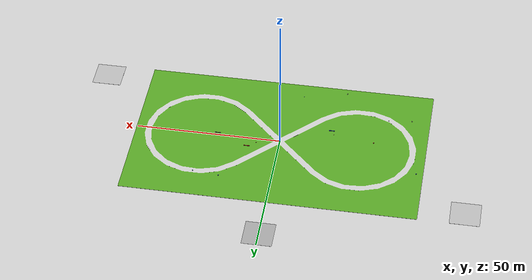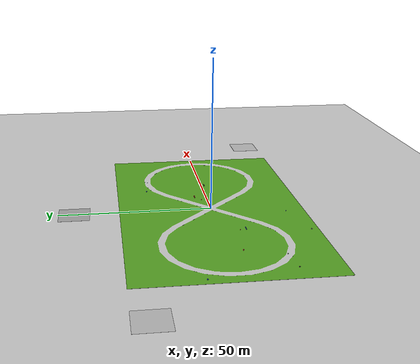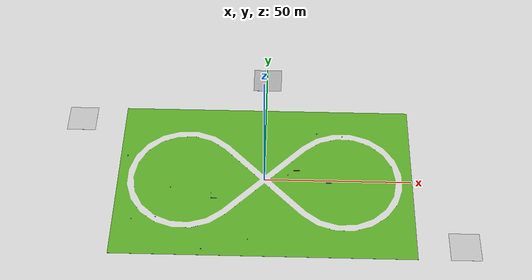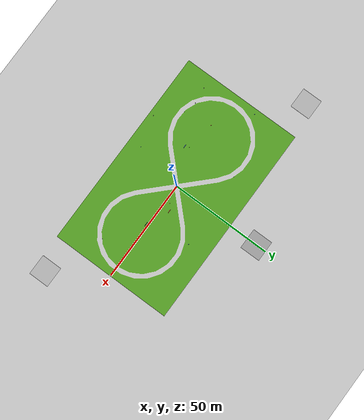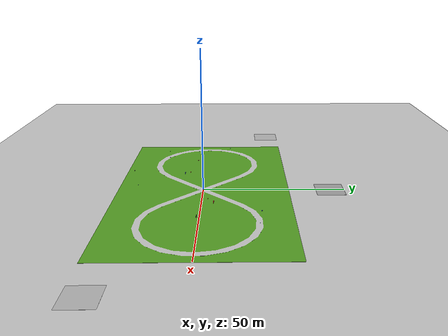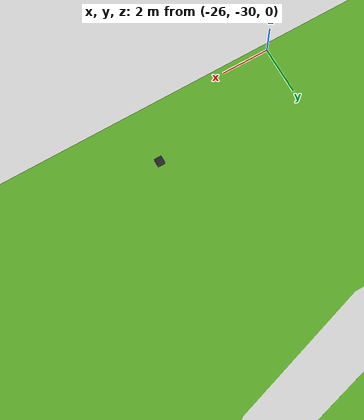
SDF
<?xml version="1.0" ?>
<sdf version="1.4">
	<world name="default">

		<!-- A global light source -->
		<include>
			<uri>model://sun</uri>
		</include>

		<!-- A ground plane -->
		<include>
			<uri>model://ground_plane</uri>
		</include>

		<!--Model Blender of Stage-->

		<model name="testbed_scene">
			<static>true</static>
			<pose>4.262532 7.173285 0 0 0 0</pose>
			<link name="test_scene">
				<visual name="visual">
					<geometry>
						<mesh><uri>/home/luisgrvc/catkin_ws/src/mbzirc/simulator_gazebo/model/Stage_07_realscale.dae</uri></mesh>
					</geometry>
				</visual>
			</link>
		</model>

		<!-- Automatic Random Position Models -->

			<model name="Object_Black_Cylinder1">
				<pose>-36 -16 0.05 0 0 0				</pose>
				<include>
					<uri>model://object_black_cylinder_mbzirc</uri>
				</include>
			</model>

			<model name="Object_Black_Cylinder2">
				<pose>-44 -17 0.05 0 0 0				</pose>
				<include>
					<uri>model://object_black_cylinder_mbzirc</uri>
				</include>
			</model>

			<model name="Object_Black_Box1">
				<pose>-20 -28 0.05 0 0 0				</pose>
				<include>
					<uri>model://object_black_box_mbzirc</uri>
				</include>
			</model>

			<model name="Object_Blue_Cylinder1">
				<pose>27 19 0.05 0 0 0				</pose>
				<include>
					<uri>model://object_blue_cylinder_mbzirc</uri>
				</include>
			</model>

			<model name="Object_Blue_Cylinder2">
				<pose>-5 -24 0.05 0 0 0				</pose>
				<include>
					<uri>model://object_blue_cylinder_mbzirc</uri>
				</include>
			</model>

			<model name="Object_Blue_Box1">
				<pose>-48 9 0.05 0 0 0				</pose>
				<include>
					<uri>model://object_blue_box_mbzirc</uri>
				</include>
			</model>

			<model name="Object_Blue_Box2">
				<pose>18 20 0.05 0 0 0				</pose>
				<include>
					<uri>model://object_blue_box_mbzirc</uri>
				</include>
			</model>

			<model name="Object_Red_Box1">
				<pose>-32 -4 0.05 0 0 0				</pose>
				<include>
					<uri>model://object_red_box_mbzirc</uri>
				</include>
			</model>

			<model name="Object_Red_Cylinder1">
				<pose>8 2 0.05 0 0 0				</pose>
				<include>
					<uri>model://object_red_cylinder_mbzirc</uri>
				</include>
			</model>

			<model name="Object_Red_Cylinder2">
				<pose>-18 -6 0.05 0 0 0				</pose>
				<include>
					<uri>model://object_red_cylinder_mbzirc</uri>
				</include>
			</model>

			<model name="Object_Large_Red">
				<pose>11 4 0.05 0 0 0				</pose>
				<include>
					<uri>model://object_large_red_mbzirc</uri>
				</include>
			</model>

			<model name="Object_Large_Blue">
				<pose>-17 -8 0.05 0 0 0</pose>
				<include>
					<uri>model://object_large_blue_mbzirc</uri>
				</include>
			</model>

			<model name="Object_Large_Black">
				<pose>22 -1 0.05 0 0 0				</pose>
				<include>
					<uri>model://object_large_black_mbzirc</uri>
				</include>
			</model>
	</world>
</sdf>

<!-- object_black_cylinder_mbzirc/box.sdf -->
<sdf version="1.4">
<model name="Black cylinder object">
  <pose>0 0 0.08 0 0 0</pose>
  <static>true</static>
    <link name="link">
      <inertial>
        <mass>0.5</mass>
        <inertia>
          <ixx>0.083</ixx>
          <ixy>0.0</ixy>
          <ixz>0.0</ixz>
          <iyy>0.083</iyy>
          <iyz>0.0</iyz>
          <izz>0.083</izz>
        </inertia>
      </inertial>
      <collision name="collision">
        <geometry>
          <cylinder>
            <radius>0.15</radius>
            <length>0.2</length>
          </cylinder>
        </geometry>
      </collision>
      <visual name="visual">
        <geometry>
          <cylinder>
            <radius>0.15</radius>
            <length>0.2</length>
          </cylinder>
        </geometry>
        <material>
        	<script>
              <uri>file://media/materials/scripts/gazebo.material</uri>
              <name>Gazebo/Black</name>
            </script>
        </material>
      </visual>
    </link>
  </model>
</sdf>

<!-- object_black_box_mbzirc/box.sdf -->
<sdf version="1.4">
<model name="black_object">
  <pose>0 0 0.08 0 0 0</pose>
  <static>false</static>
    <link name="link">
      <inertial>
        <mass>0.5</mass>
        <inertia>
          <ixx>0.083</ixx>
          <ixy>0.0</ixy>
          <ixz>0.0</ixz>
          <iyy>0.083</iyy>
          <iyz>0.0</iyz>
          <izz>0.083</izz>
        </inertia>
      </inertial>
      <collision name="collision">
        <geometry>
          <box>
            <size>0.3 0.3 0.2</size>
          </box>
        </geometry>
      </collision>
      <visual name="visual">
        <geometry>
          <box>
            <size>0.3 0.3 0.2</size>
          </box>
        </geometry>
        <material>
        	<script>
              <uri>file://media/materials/scripts/gazebo.material</uri>
              <name>Gazebo/Black</name>
            </script>
        </material>
      </visual>
    </link>
  </model>
</sdf>

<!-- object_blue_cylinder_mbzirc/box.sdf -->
<sdf version="1.4">
<model name="Blue cylinder object">
  <pose>0 0 0.08 0 0 0</pose>
    <link name="grab_here">
      <inertial>
        <mass>0.5</mass>
        <inertia>
          <ixx>0.083</ixx>
          <ixy>0.0</ixy>
          <ixz>0.0</ixz>
          <iyy>0.083</iyy>
          <iyz>0.0</iyz>
          <izz>0.083</izz>
        </inertia>
      </inertial>
      <collision name="collision">
        <geometry>
          <cylinder>
            <radius>0.10</radius>
            <length>0.2</length>
          </cylinder>
        </geometry>
      </collision>
      <visual name="visual">
        <geometry>
          <cylinder>
            <radius>0.10</radius>
            <length>0.2</length>
          </cylinder>
        </geometry>
        <material>
        	<script>
              <uri>file://media/materials/scripts/gazebo.material</uri>
              <name>Gazebo/Blue</name>
            </script>
        </material>
      </visual>
    </link>
  </model>
</sdf>

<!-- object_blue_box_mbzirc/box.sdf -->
<sdf version="1.4">
<model name="Blue Object">
  <pose>0 0 0.08 0 0 0</pose>
  <static>true</static>
    <link name="link">
      <inertial>
        <mass>0.5</mass>
        <inertia>
          <ixx>0.083</ixx>
          <ixy>0.0</ixy>
          <ixz>0.0</ixz>
          <iyy>0.083</iyy>
          <iyz>0.0</iyz>
          <izz>0.083</izz>
        </inertia>
      </inertial>
      <collision name="collision">
        <geometry>
          <box>
            <size>0.3 0.3 0.2</size>
          </box>
        </geometry>
      </collision>
      <visual name="visual">
        <geometry>
          <box>
            <size>0.3 0.3 0.2</size>
          </box>
        </geometry>
        <material>
        	<script>
              <uri>file://media/materials/scripts/gazebo.material</uri>
              <name>Gazebo/Blue</name>
            </script>
        </material>
      </visual>
    </link>
  </model>
</sdf>

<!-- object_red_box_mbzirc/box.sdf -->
<sdf version="1.4">
<model name="Red Box Object">
  <pose>0 0 0.08 0 0 0</pose>
  <static>true</static>
    <link name="link">
      <inertial>
        <mass>0.5</mass>
        <inertia>
          <ixx>0.083</ixx>
          <ixy>0.0</ixy>
          <ixz>0.0</ixz>
          <iyy>0.083</iyy>
          <iyz>0.0</iyz>
          <izz>0.083</izz>
        </inertia>
      </inertial>
      <collision name="collision">
        <geometry>
          <box>
            <size>0.3 0.3 0.2</size>
          </box>
        </geometry>
      </collision>
      <visual name="visual">
        <geometry>
          <box>
            <size>0.3 0.3 0.2</size>
          </box>
        </geometry>
        <material>
        	<script>
              <uri>file://media/materials/scripts/gazebo.material</uri>
              <name>Gazebo/Red</name>
            </script>
        </material>
      </visual>
    </link>
  </model>
</sdf>

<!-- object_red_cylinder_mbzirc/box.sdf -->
<sdf version="1.4">
<model name="Red cylinder object">
  <pose>0 0 0.08 0 0 0</pose>
    <link name="grab_here">
      <inertial>
        <mass>0.5</mass>
        <inertia>
          <ixx>0.083</ixx>
          <ixy>0.0</ixy>
          <ixz>0.0</ixz>
          <iyy>0.083</iyy>
          <iyz>0.0</iyz>
          <izz>0.083</izz>
        </inertia>
      </inertial>
      <collision name="collision">
        <geometry>
          <cylinder>
            <radius>0.10</radius>
            <length>0.2</length>
          </cylinder>
        </geometry>
      </collision>
      <visual name="visual">
        <geometry>
          <cylinder>
            <radius>0.10</radius>
            <length>0.2</length>
          </cylinder>
        </geometry>
        <material>
        	<script>
              <uri>file://media/materials/scripts/gazebo.material</uri>
              <name>Gazebo/Red</name>
            </script>
        </material>
      </visual>
    </link>
  </model>
</sdf>

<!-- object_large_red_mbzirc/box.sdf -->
<sdf version="1.4">
<model name="Large Red object">
  <pose>0 0 0.04 0 0 0</pose>
  <static>true</static>
    <link name="link">
      <inertial>
        <mass>2</mass>
        <inertia>
          <ixx>0.083</ixx>
          <ixy>0.0</ixy>
          <ixz>0.0</ixz>
          <iyy>0.083</iyy>
          <iyz>0.0</iyz>
          <izz>0.083</izz>
        </inertia>
      </inertial>
      <collision name="collision">
        <geometry>
          <box>
            <size>2 0.2 0.2</size>
          </box>
        </geometry>
      </collision>
      <visual name="visual">
        <geometry>
          <box>
            <size>2 0.2 0.2</size>
          </box>
        </geometry>
        <material>
        	<script>
              <uri>file://media/materials/scripts/gazebo.material</uri>
              <name>Gazebo/Red</name>
            </script>
        </material>
      </visual>
    </link>
  </model>
</sdf>

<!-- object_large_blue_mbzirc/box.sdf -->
<sdf version="1.4">
<model name="Large Blue object">
  <pose>0 0 0.04 0 0 0</pose>
  <static>true</static>
    <link name="link">
      <inertial>
        <mass>2</mass>
        <inertia>
          <ixx>0.083</ixx>
          <ixy>0.0</ixy>
          <ixz>0.0</ixz>
          <iyy>0.083</iyy>
          <iyz>0.0</iyz>
          <izz>0.083</izz>
        </inertia>
      </inertial>
      <collision name="collision">
        <geometry>
          <box>
            <size>2 0.2 0.2</size>
          </box>
        </geometry>
      </collision>
      <visual name="visual">
        <geometry>
          <box>
            <size>2 0.2 0.2</size>
          </box>
        </geometry>
        <material>
        	<script>
              <uri>file://media/materials/scripts/gazebo.material</uri>
              <name>Gazebo/Blue</name>
            </script>
        </material>
      </visual>
    </link>
  </model>
</sdf>

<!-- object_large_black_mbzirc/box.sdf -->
<sdf version="1.4">
<model name="Large Black object">
  <pose>0 0 0.04 0 0 0</pose>
  <static>true</static>
    <link name="link">
      <inertial>
        <mass>2</mass>
        <inertia>
          <ixx>0.083</ixx>
          <ixy>0.0</ixy>
          <ixz>0.0</ixz>
          <iyy>0.083</iyy>
          <iyz>0.0</iyz>
          <izz>0.083</izz>
        </inertia>
      </inertial>
      <collision name="collision">
        <geometry>
          <box>
            <size>2 0.2 0.2</size>
          </box>
        </geometry>
      </collision>
      <visual name="visual">
        <geometry>
          <box>
            <size>2 0.2 0.2</size>
          </box>
        </geometry>
        <material>
        	<script>
              <uri>file://media/materials/scripts/gazebo.material</uri>
              <name>Gazebo/Black</name>
            </script>
        </material>
      </visual>
    </link>
  </model>
</sdf>
